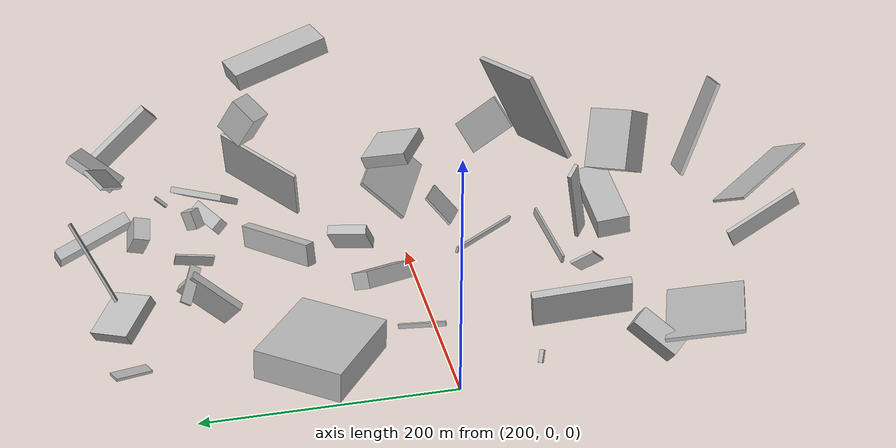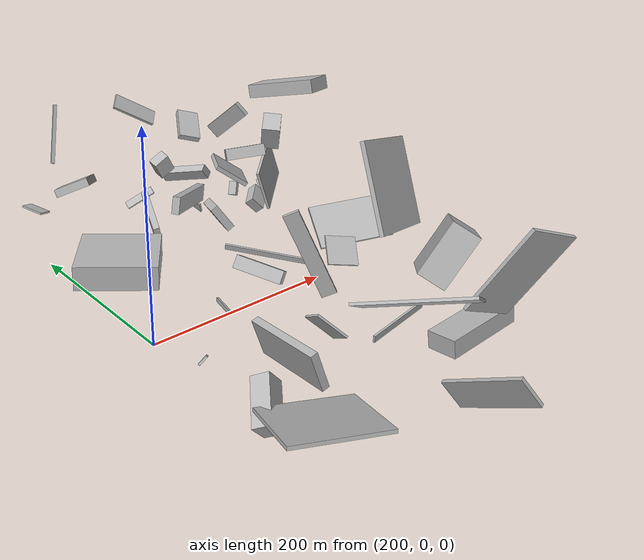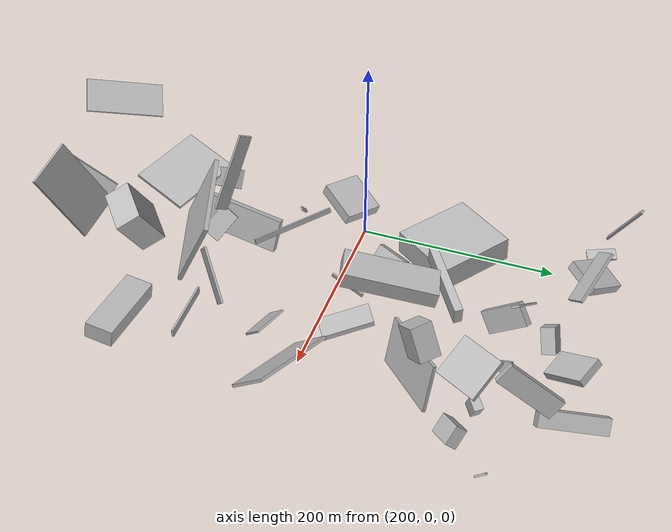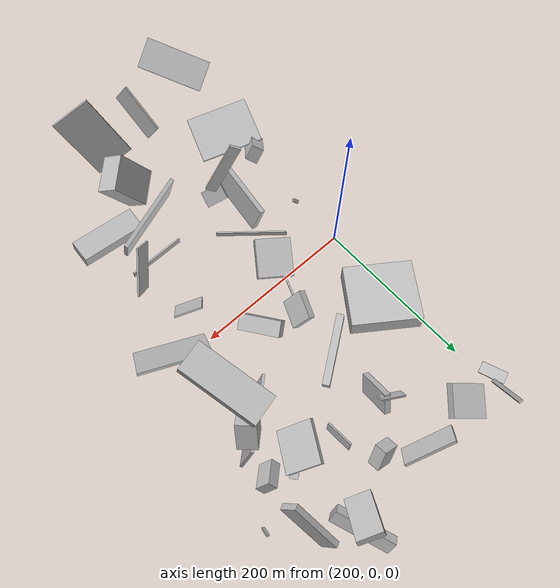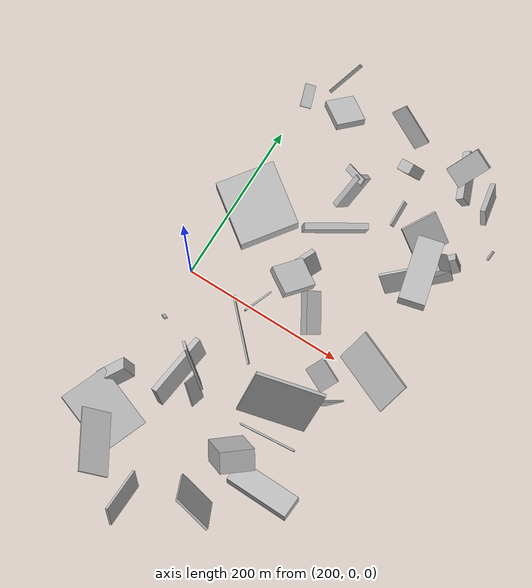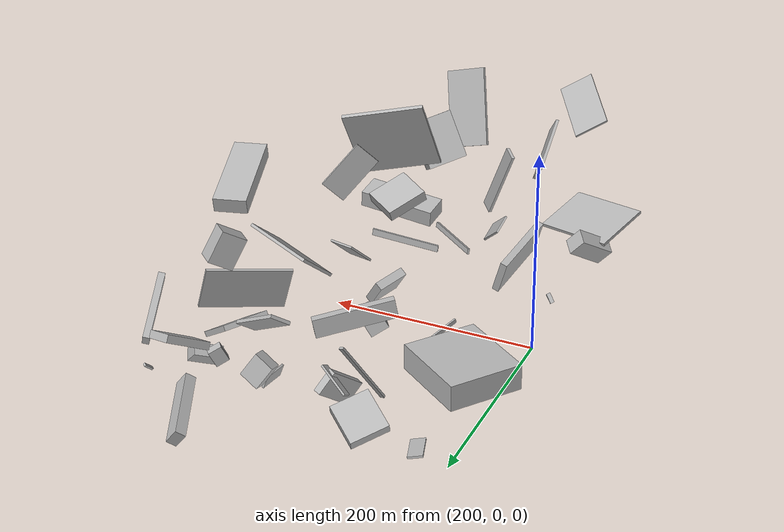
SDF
<sdf version="1.6">
 <world name="default">
  <model name="building_1">
   <static>0</static>
   <pose>321.53982198937206 184.36518339426453 60.038453072478234 2.3258296921843775 -0.7869318131240794 -2.5791826739291337</pose>
   <link name="link">
    <gravity>0</gravity>
    <pose>0 0 16.5 0 0 0</pose>
    <collision name="collision"><geometry><box><size>2 9 33</size></box></geometry></collision>
    <visual name="visual">
     <cast_shadows>0</cast_shadows>
     <geometry><box><size>2 9 33</size></box></geometry>
     <material>
      <script>
       <uri>model://HANNAS_wall/materials/scripts</uri>
       <uri>model://HANNAS_wall/materials/textures</uri>
       <name>vrc/HANNAS_wall</name>
      </script>
     </material>
    </visual>
   </link>
  </model>
  <model name="building_2">
   <static>0</static>
   <pose>244.5683551302554 256.04283425699384 55.06690252435276 -0.5538730846539689 1.1313897956090837 -1.2398270200220145</pose>
   <link name="link">
    <gravity>0</gravity>
    <pose>0 0 19.5 0 0 0</pose>
    <collision name="collision"><geometry><box><size>9 35 39</size></box></geometry></collision>
    <visual name="visual">
     <cast_shadows>0</cast_shadows>
     <geometry><box><size>9 35 39</size></box></geometry>
     <material>
      <script>
       <uri>model://HANNAS_wall/materials/scripts</uri>
       <uri>model://HANNAS_wall/materials/textures</uri>
       <name>vrc/HANNAS_wall</name>
      </script>
     </material>
    </visual>
   </link>
  </model>
  <model name="building_4">
   <static>0</static>
   <pose>357.1433353258042 -166.04339648634334 84.56384752909005 0.2826874514921741 -0.49016615545306 2.1537494366476233</pose>
   <link name="link">
    <gravity>0</gravity>
    <pose>0 0 24.5 0 0 0</pose>
    <collision name="collision"><geometry><box><size>25 40 49</size></box></geometry></collision>
    <visual name="visual">
     <cast_shadows>0</cast_shadows>
     <geometry><box><size>25 40 49</size></box></geometry>
     <material>
      <script>
       <uri>model://HANNAS_wall/materials/scripts</uri>
       <uri>model://HANNAS_wall/materials/textures</uri>
       <name>vrc/HANNAS_wall</name>
      </script>
     </material>
    </visual>
   </link>
  </model>
  <model name="building_5">
   <static>0</static>
   <pose>367.97292701208306 227.73783851640553 59.9342800607387 0.5679465393910295 0.2706285916557988 -1.5300968830589297</pose>
   <link name="link">
    <gravity>0</gravity>
    <pose>0 0 12.0 0 0 0</pose>
    <collision name="collision"><geometry><box><size>13 19 24</size></box></geometry></collision>
    <visual name="visual">
     <cast_shadows>0</cast_shadows>
     <geometry><box><size>13 19 24</size></box></geometry>
     <material>
      <script>
       <uri>model://HANNAS_wall/materials/scripts</uri>
       <uri>model://HANNAS_wall/materials/textures</uri>
       <name>vrc/HANNAS_wall</name>
      </script>
     </material>
    </visual>
   </link>
  </model>
  <model name="building_6">
   <static>0</static>
   <pose>321.94541900886026 255.65552706213742 146.51356068530302 -2.1983301507741353 0.5951299160492228 -2.3150131637451965</pose>
   <link name="link">
    <gravity>0</gravity>
    <pose>0 0 25.0 0 0 0</pose>
    <collision name="collision"><geometry><box><size>19 3 50</size></box></geometry></collision>
    <visual name="visual">
     <cast_shadows>0</cast_shadows>
     <geometry><box><size>19 3 50</size></box></geometry>
     <material>
      <script>
       <uri>model://HANNAS_wall/materials/scripts</uri>
       <uri>model://HANNAS_wall/materials/textures</uri>
       <name>vrc/HANNAS_wall</name>
      </script>
     </material>
    </visual>
   </link>
  </model>
  <model name="building_11">
   <static>0</static>
   <pose>420.35933814122984 -72.39825979661173 104.53142580228842 -1.473053835243545 0.7792441506766605 0.7714773359803924</pose>
   <link name="link">
    <gravity>0</gravity>
    <pose>0 0 1.0 0 0 0</pose>
    <collision name="collision"><geometry><box><size>52 29 2</size></box></geometry></collision>
    <visual name="visual">
     <cast_shadows>0</cast_shadows>
     <geometry><box><size>52 29 2</size></box></geometry>
     <material>
      <script>
       <uri>model://HANNAS_wall/materials/scripts</uri>
       <uri>model://HANNAS_wall/materials/textures</uri>
       <name>vrc/HANNAS_wall</name>
      </script>
     </material>
    </visual>
   </link>
  </model>
  <model name="building_15">
   <static>0</static>
   <pose>454.3205247265319 18.680084763223235 64.82193984084097 2.299274334736842 -0.08254288734875107 -0.4084981752505243</pose>
   <link name="link">
    <gravity>0</gravity>
    <pose>0 0 23.5 0 0 0</pose>
    <collision name="collision"><geometry><box><size>80 3 47</size></box></geometry></collision>
    <visual name="visual">
     <cast_shadows>0</cast_shadows>
     <geometry><box><size>80 3 47</size></box></geometry>
     <material>
      <script>
       <uri>model://HANNAS_wall/materials/scripts</uri>
       <uri>model://HANNAS_wall/materials/textures</uri>
       <name>vrc/HANNAS_wall</name>
      </script>
     </material>
    </visual>
   </link>
  </model>
  <model name="building_16">
   <static>0</static>
   <pose>326.4926368098241 114.91050336529258 69.84486807444134 -1.5125699800468517 0.17521963808138183 0.607301735482143</pose>
   <link name="link">
    <gravity>0</gravity>
    <pose>0 0 4.0 0 0 0</pose>
    <collision name="collision"><geometry><box><size>75 18 8</size></box></geometry></collision>
    <visual name="visual">
     <cast_shadows>0</cast_shadows>
     <geometry><box><size>75 18 8</size></box></geometry>
     <material>
      <script>
       <uri>model://HANNAS_wall/materials/scripts</uri>
       <uri>model://HANNAS_wall/materials/textures</uri>
       <name>vrc/HANNAS_wall</name>
      </script>
     </material>
    </visual>
   </link>
  </model>
  <model name="building_18">
   <static>0</static>
   <pose>238.9608457780845 -243.32008612772552 137.45421560194094 0.5344377974310542 0.24018456430994972 2.1257396357131166</pose>
   <link name="link">
    <gravity>0</gravity>
    <pose>0 0 1.0 0 0 0</pose>
    <collision name="collision"><geometry><box><size>76 35 2</size></box></geometry></collision>
    <visual name="visual">
     <cast_shadows>0</cast_shadows>
     <geometry><box><size>76 35 2</size></box></geometry>
     <material>
      <script>
       <uri>model://HANNAS_wall/materials/scripts</uri>
       <uri>model://HANNAS_wall/materials/textures</uri>
       <name>vrc/HANNAS_wall</name>
      </script>
     </material>
    </visual>
   </link>
  </model>
  <model name="building_19">
   <static>0</static>
   <pose>334.9131525838895 51.23666262697058 19.242122971849476 1.9829877771893691 -1.033915855724957 0.18963667894834102</pose>
   <link name="link">
    <gravity>0</gravity>
    <pose>0 0 25.5 0 0 0</pose>
    <collision name="collision"><geometry><box><size>14 19 51</size></box></geometry></collision>
    <visual name="visual">
     <cast_shadows>0</cast_shadows>
     <geometry><box><size>14 19 51</size></box></geometry>
     <material>
      <script>
       <uri>model://HANNAS_wall/materials/scripts</uri>
       <uri>model://HANNAS_wall/materials/textures</uri>
       <name>vrc/HANNAS_wall</name>
      </script>
     </material>
    </visual>
   </link>
  </model>
  <model name="building_20">
   <static>0</static>
   <pose>400.5558592657276 -31.981942946032973 43.09563115350597 -2.9176440780400448 -0.763154665497897 0.9791339971299844</pose>
   <link name="link">
    <gravity>0</gravity>
    <pose>0 0 1.0 0 0 0</pose>
    <collision name="collision"><geometry><box><size>30 32 2</size></box></geometry></collision>
    <visual name="visual">
     <cast_shadows>0</cast_shadows>
     <geometry><box><size>30 32 2</size></box></geometry>
     <material>
      <script>
       <uri>model://HANNAS_wall/materials/scripts</uri>
       <uri>model://HANNAS_wall/materials/textures</uri>
       <name>vrc/HANNAS_wall</name>
      </script>
     </material>
    </visual>
   </link>
  </model>
  <model name="building_21">
   <static>0</static>
   <pose>326.08281450230476 75.36427500101351 70.27158989770777 -1.4225935029083 0.6206829814180932 2.8365470944919573</pose>
   <link name="link">
    <gravity>0</gravity>
    <pose>0 0 15.5 0 0 0</pose>
    <collision name="collision"><geometry><box><size>8 28 31</size></box></geometry></collision>
    <visual name="visual">
     <cast_shadows>0</cast_shadows>
     <geometry><box><size>8 28 31</size></box></geometry>
     <material>
      <script>
       <uri>model://HANNAS_wall/materials/scripts</uri>
       <uri>model://HANNAS_wall/materials/textures</uri>
       <name>vrc/HANNAS_wall</name>
      </script>
     </material>
    </visual>
   </link>
  </model>
  <model name="building_24">
   <static>0</static>
   <pose>374.05560771170485 165.71342379470494 30.35902407241535 1.0038021462720719 -1.22700440174696 -2.5803876002851545</pose>
   <link name="link">
    <gravity>0</gravity>
    <pose>0 0 16.0 0 0 0</pose>
    <collision name="collision"><geometry><box><size>11 2 32</size></box></geometry></collision>
    <visual name="visual">
     <cast_shadows>0</cast_shadows>
     <geometry><box><size>11 2 32</size></box></geometry>
     <material>
      <script>
       <uri>model://HANNAS_wall/materials/scripts</uri>
       <uri>model://HANNAS_wall/materials/textures</uri>
       <name>vrc/HANNAS_wall</name>
      </script>
     </material>
    </visual>
   </link>
  </model>
  <model name="building_25">
   <static>0</static>
   <pose>411.4774705484781 -175.77173602401783 30.51588976289489 -3.023605707500485 0.085916448266306 3.107376561737641</pose>
   <link name="link">
    <gravity>0</gravity>
    <pose>0 0 8.5 0 0 0</pose>
    <collision name="collision"><geometry><box><size>80 28 17</size></box></geometry></collision>
    <visual name="visual">
     <cast_shadows>0</cast_shadows>
     <geometry><box><size>80 28 17</size></box></geometry>
     <material>
      <script>
       <uri>model://HANNAS_wall/materials/scripts</uri>
       <uri>model://HANNAS_wall/materials/textures</uri>
       <name>vrc/HANNAS_wall</name>
      </script>
     </material>
    </visual>
   </link>
  </model>
  <model name="building_30">
   <static>0</static>
   <pose>489.14865965309934 199.40716619260962 21.707170887338116 0.9756807874318756 -0.7654813950728107 1.4363300467733813</pose>
   <link name="link">
    <gravity>0</gravity>
    <pose>0 0 1.5 0 0 0</pose>
    <collision name="collision"><geometry><box><size>13 2 3</size></box></geometry></collision>
    <visual name="visual">
     <cast_shadows>0</cast_shadows>
     <geometry><box><size>13 2 3</size></box></geometry>
     <material>
      <script>
       <uri>model://HANNAS_wall/materials/scripts</uri>
       <uri>model://HANNAS_wall/materials/textures</uri>
       <name>vrc/HANNAS_wall</name>
      </script>
     </material>
    </visual>
   </link>
  </model>
  <model name="building_31">
   <static>0</static>
   <pose>260.55742273994053 -112.69491995401285 27.806536983903634 2.783692346117882 1.248150926837144 -0.44463457990562777</pose>
   <link name="link">
    <gravity>0</gravity>
    <pose>0 0 3.5 0 0 0</pose>
    <collision name="collision"><geometry><box><size>35 80 7</size></box></geometry></collision>
    <visual name="visual">
     <cast_shadows>0</cast_shadows>
     <geometry><box><size>35 80 7</size></box></geometry>
     <material>
      <script>
       <uri>model://HANNAS_wall/materials/scripts</uri>
       <uri>model://HANNAS_wall/materials/textures</uri>
       <name>vrc/HANNAS_wall</name>
      </script>
     </material>
    </visual>
   </link>
  </model>
  <model name="building_33">
   <static>0</static>
   <pose>208.88342839232777 244.31116007597095 46.127419451210166 0.09245259295662576 0.17413969268800525 0.3339589015863865</pose>
   <link name="link">
    <gravity>0</gravity>
    <pose>0 0 1.0 0 0 0</pose>
    <collision name="collision"><geometry><box><size>13 28 2</size></box></geometry></collision>
    <visual name="visual">
     <cast_shadows>0</cast_shadows>
     <geometry><box><size>13 28 2</size></box></geometry>
     <material>
      <script>
       <uri>model://HANNAS_wall/materials/scripts</uri>
       <uri>model://HANNAS_wall/materials/textures</uri>
       <name>vrc/HANNAS_wall</name>
      </script>
     </material>
    </visual>
   </link>
  </model>
  <model name="building_34">
   <static>0</static>
   <pose>354.42393726402497 -221.28666738361358 79.19681946710435 0.36861767349197394 0.3299774883195416 -0.18974162397520122</pose>
   <link name="link">
    <gravity>0</gravity>
    <pose>0 0 40.0 0 0 0</pose>
    <collision name="collision"><geometry><box><size>47 3 80</size></box></geometry></collision>
    <visual name="visual">
     <cast_shadows>0</cast_shadows>
     <geometry><box><size>47 3 80</size></box></geometry>
     <material>
      <script>
       <uri>model://HANNAS_wall/materials/scripts</uri>
       <uri>model://HANNAS_wall/materials/textures</uri>
       <name>vrc/HANNAS_wall</name>
      </script>
     </material>
    </visual>
   </link>
  </model>
  <model name="building_36">
   <static>0</static>
   <pose>419.80858059282394 254.17143824060315 97.08735576330547 -0.298816540223475 0.5097856728009594 -2.1197284092060937</pose>
   <link name="link">
    <gravity>0</gravity>
    <pose>0 0 3.5 0 0 0</pose>
    <collision name="collision"><geometry><box><size>43 26 7</size></box></geometry></collision>
    <visual name="visual">
     <cast_shadows>0</cast_shadows>
     <geometry><box><size>43 26 7</size></box></geometry>
     <material>
      <script>
       <uri>model://HANNAS_wall/materials/scripts</uri>
       <uri>model://HANNAS_wall/materials/textures</uri>
       <name>vrc/HANNAS_wall</name>
      </script>
     </material>
    </visual>
   </link>
  </model>
  <model name="building_40">
   <static>0</static>
   <pose>415.23016846635187 166.91613231238287 65.28188734794688 -0.5968900066433697 0.012001060525940594 -2.0847183060141554</pose>
   <link name="link">
    <gravity>0</gravity>
    <pose>0 0 2.5 0 0 0</pose>
    <collision name="collision"><geometry><box><size>44 41 5</size></box></geometry></collision>
    <visual name="visual">
     <cast_shadows>0</cast_shadows>
     <geometry><box><size>44 41 5</size></box></geometry>
     <material>
      <script>
       <uri>model://HANNAS_wall/materials/scripts</uri>
       <uri>model://HANNAS_wall/materials/textures</uri>
       <name>vrc/HANNAS_wall</name>
      </script>
     </material>
    </visual>
   </link>
  </model>
  <model name="building_41">
   <static>0</static>
   <pose>455.5510348787533 156.97632057071695 27.272083154900113 2.296855154220067 0.3521901056851182 -2.4173719541858243</pose>
   <link name="link">
    <gravity>0</gravity>
    <pose>0 0 6.0 0 0 0</pose>
    <collision name="collision"><geometry><box><size>27 19 12</size></box></geometry></collision>
    <visual name="visual">
     <cast_shadows>0</cast_shadows>
     <geometry><box><size>27 19 12</size></box></geometry>
     <material>
      <script>
       <uri>model://HANNAS_wall/materials/scripts</uri>
       <uri>model://HANNAS_wall/materials/textures</uri>
       <name>vrc/HANNAS_wall</name>
      </script>
     </material>
    </visual>
   </link>
  </model>
  <model name="building_45">
   <static>0</static>
   <pose>260.58084886616734 78.0712286967168 32.786475783972435 1.5479172124594813 0.017315502686469402 -2.199904375627292</pose>
   <link name="link">
    <gravity>0</gravity>
    <pose>0 0 40.0 0 0 0</pose>
    <collision name="collision"><geometry><box><size>72 25 80</size></box></geometry></collision>
    <visual name="visual">
     <cast_shadows>0</cast_shadows>
     <geometry><box><size>72 25 80</size></box></geometry>
     <material>
      <script>
       <uri>model://HANNAS_wall/materials/scripts</uri>
       <uri>model://HANNAS_wall/materials/textures</uri>
       <name>vrc/HANNAS_wall</name>
      </script>
     </material>
    </visual>
   </link>
  </model>
  <model name="building_46">
   <static>0</static>
   <pose>284.84574846895106 -132.98847154518822 50.314801554100455 -2.230116973428143 -0.6210373875121137 0.24544773210711454</pose>
   <link name="link">
    <gravity>0</gravity>
    <pose>0 0 10.0 0 0 0</pose>
    <collision name="collision"><geometry><box><size>2 32 20</size></box></geometry></collision>
    <visual name="visual">
     <cast_shadows>0</cast_shadows>
     <geometry><box><size>2 32 20</size></box></geometry>
     <material>
      <script>
       <uri>model://HANNAS_wall/materials/scripts</uri>
       <uri>model://HANNAS_wall/materials/textures</uri>
       <name>vrc/HANNAS_wall</name>
      </script>
     </material>
    </visual>
   </link>
  </model>
  <model name="building_47">
   <static>0</static>
   <pose>430.70991753570337 230.60552070959181 43.569958205736285 1.9576995583430288 -0.9148888509285477 -3.0725280858124546</pose>
   <link name="link">
    <gravity>0</gravity>
    <pose>0 0 33.0 0 0 0</pose>
    <collision name="collision"><geometry><box><size>16 10 66</size></box></geometry></collision>
    <visual name="visual">
     <cast_shadows>0</cast_shadows>
     <geometry><box><size>16 10 66</size></box></geometry>
     <material>
      <script>
       <uri>model://HANNAS_wall/materials/scripts</uri>
       <uri>model://HANNAS_wall/materials/textures</uri>
       <name>vrc/HANNAS_wall</name>
      </script>
     </material>
    </visual>
   </link>
  </model>
  <model name="building_48">
   <static>0</static>
   <pose>210.676868676987 -197.58604191302948 37.959275813156665 3.0464143307435254 -0.2217341136665041 -1.9035942417797669</pose>
   <link name="link">
    <gravity>0</gravity>
    <pose>0 0 1.5 0 0 0</pose>
    <collision name="collision"><geometry><box><size>61 80 3</size></box></geometry></collision>
    <visual name="visual">
     <cast_shadows>0</cast_shadows>
     <geometry><box><size>61 80 3</size></box></geometry>
     <material>
      <script>
       <uri>model://HANNAS_wall/materials/scripts</uri>
       <uri>model://HANNAS_wall/materials/textures</uri>
       <name>vrc/HANNAS_wall</name>
      </script>
     </material>
    </visual>
   </link>
  </model>
  <model name="building_51">
   <static>0</static>
   <pose>325.8280182299901 -69.78239535423596 68.52644091902388 0.9957617794526732 -1.296502525397477 -1.8071077927647</pose>
   <link name="link">
    <gravity>0</gravity>
    <pose>0 0 40.0 0 0 0</pose>
    <collision name="collision"><geometry><box><size>5 2 80</size></box></geometry></collision>
    <visual name="visual">
     <cast_shadows>0</cast_shadows>
     <geometry><box><size>5 2 80</size></box></geometry>
     <material>
      <script>
       <uri>model://HANNAS_wall/materials/scripts</uri>
       <uri>model://HANNAS_wall/materials/textures</uri>
       <name>vrc/HANNAS_wall</name>
      </script>
     </material>
    </visual>
   </link>
  </model>
  <model name="building_53">
   <static>0</static>
   <pose>385.78711264097177 -95.69447135286724 134.8880915346951 0.48526658739047723 -1.1325393450395527 1.4014594978492791</pose>
   <link name="link">
    <gravity>0</gravity>
    <pose>0 0 2.0 0 0 0</pose>
    <collision name="collision"><geometry><box><size>80 80 4</size></box></geometry></collision>
    <visual name="visual">
     <cast_shadows>0</cast_shadows>
     <geometry><box><size>80 80 4</size></box></geometry>
     <material>
      <script>
       <uri>model://HANNAS_wall/materials/scripts</uri>
       <uri>model://HANNAS_wall/materials/textures</uri>
       <name>vrc/HANNAS_wall</name>
      </script>
     </material>
    </visual>
   </link>
  </model>
  <model name="building_55">
   <static>0</static>
   <pose>457.45829777555105 102.62793700611184 174.46541321033789 -1.530538233895762 -1.3564161134081119 1.7802410299504512</pose>
   <link name="link">
    <gravity>0</gravity>
    <pose>0 0 15.0 0 0 0</pose>
    <collision name="collision"><geometry><box><size>14 80 30</size></box></geometry></collision>
    <visual name="visual">
     <cast_shadows>0</cast_shadows>
     <geometry><box><size>14 80 30</size></box></geometry>
     <material>
      <script>
       <uri>model://HANNAS_wall/materials/scripts</uri>
       <uri>model://HANNAS_wall/materials/textures</uri>
       <name>vrc/HANNAS_wall</name>
      </script>
     </material>
    </visual>
   </link>
  </model>
  <model name="building_56">
   <static>0</static>
   <pose>454.56163720809104 135.28048017634765 124.13397981907808 2.1110346780589984 0.07125370361169901 -0.7669972758280024</pose>
   <link name="link">
    <gravity>0</gravity>
    <pose>0 0 12.5 0 0 0</pose>
    <collision name="collision"><geometry><box><size>20 31 25</size></box></geometry></collision>
    <visual name="visual">
     <cast_shadows>0</cast_shadows>
     <geometry><box><size>20 31 25</size></box></geometry>
     <material>
      <script>
       <uri>model://HANNAS_wall/materials/scripts</uri>
       <uri>model://HANNAS_wall/materials/textures</uri>
       <name>vrc/HANNAS_wall</name>
      </script>
     </material>
    </visual>
   </link>
  </model>
  <model name="building_59">
   <static>0</static>
   <pose>204.79321230246495 -66.87322919678076 17.098927729195147 -1.9392901145514658 0.646269645814856 -1.0282146034644648</pose>
   <link name="link">
    <gravity>0</gravity>
    <pose>0 0 2.0 0 0 0</pose>
    <collision name="collision"><geometry><box><size>2 10 4</size></box></geometry></collision>
    <visual name="visual">
     <cast_shadows>0</cast_shadows>
     <geometry><box><size>2 10 4</size></box></geometry>
     <material>
      <script>
       <uri>model://HANNAS_wall/materials/scripts</uri>
       <uri>model://HANNAS_wall/materials/textures</uri>
       <name>vrc/HANNAS_wall</name>
      </script>
     </material>
    </visual>
   </link>
  </model>
  <model name="building_60">
   <static>0</static>
   <pose>428.12078289646087 174.34791508988752 30.30778925823734 -0.4483061115200976 0.018569184738727793 -0.8862359092171305</pose>
   <link name="link">
    <gravity>0</gravity>
    <pose>0 0 8.0 0 0 0</pose>
    <collision name="collision"><geometry><box><size>9 13 16</size></box></geometry></collision>
    <visual name="visual">
     <cast_shadows>0</cast_shadows>
     <geometry><box><size>9 13 16</size></box></geometry>
     <material>
      <script>
       <uri>model://HANNAS_wall/materials/scripts</uri>
       <uri>model://HANNAS_wall/materials/textures</uri>
       <name>vrc/HANNAS_wall</name>
      </script>
     </material>
    </visual>
   </link>
  </model>
  <model name="building_62">
   <static>0</static>
   <pose>204.1996242632879 -153.65363591633746 22.042744514230385 0.595099401477829 -0.44080921576696636 -0.9386463713853994</pose>
   <link name="link">
    <gravity>0</gravity>
    <pose>0 0 10.0 0 0 0</pose>
    <collision name="collision"><geometry><box><size>16 40 20</size></box></geometry></collision>
    <visual name="visual">
     <cast_shadows>0</cast_shadows>
     <geometry><box><size>16 40 20</size></box></geometry>
     <material>
      <script>
       <uri>model://HANNAS_wall/materials/scripts</uri>
       <uri>model://HANNAS_wall/materials/textures</uri>
       <name>vrc/HANNAS_wall</name>
      </script>
     </material>
    </visual>
   </link>
  </model>
  <model name="building_65">
   <static>0</static>
   <pose>247.25716938029984 261.76109390975745 121.11431880113332 2.055629286322696 -0.2881959491586621 2.9482469626863157</pose>
   <link name="link">
    <gravity>0</gravity>
    <pose>0 0 1.0 0 0 0</pose>
    <collision name="collision"><geometry><box><size>4 66 2</size></box></geometry></collision>
    <visual name="visual">
     <cast_shadows>0</cast_shadows>
     <geometry><box><size>4 66 2</size></box></geometry>
     <material>
      <script>
       <uri>model://HANNAS_wall/materials/scripts</uri>
       <uri>model://HANNAS_wall/materials/textures</uri>
       <name>vrc/HANNAS_wall</name>
      </script>
     </material>
    </visual>
   </link>
  </model>
  <model name="building_70">
   <static>0</static>
   <pose>338.6935584119752 16.434851150626244 147.94695381536656 -1.711878207218128 0.322640949892663 0.9455333945785159</pose>
   <link name="link">
    <gravity>0</gravity>
    <pose>0 0 17.5 0 0 0</pose>
    <collision name="collision"><geometry><box><size>38 10 35</size></box></geometry></collision>
    <visual name="visual">
     <cast_shadows>0</cast_shadows>
     <geometry><box><size>38 10 35</size></box></geometry>
     <material>
      <script>
       <uri>model://HANNAS_wall/materials/scripts</uri>
       <uri>model://HANNAS_wall/materials/textures</uri>
       <name>vrc/HANNAS_wall</name>
      </script>
     </material>
    </visual>
   </link>
  </model>
  <model name="building_71">
   <static>0</static>
   <pose>434.82603332911543 116.06665394776223 73.1653747144323 1.8279378546769884 0.17320218359364178 -2.423860802231068</pose>
   <link name="link">
    <gravity>0</gravity>
    <pose>0 0 1.5 0 0 0</pose>
    <collision name="collision"><geometry><box><size>80 45 3</size></box></geometry></collision>
    <visual name="visual">
     <cast_shadows>0</cast_shadows>
     <geometry><box><size>80 45 3</size></box></geometry>
     <material>
      <script>
       <uri>model://HANNAS_wall/materials/scripts</uri>
       <uri>model://HANNAS_wall/materials/textures</uri>
       <name>vrc/HANNAS_wall</name>
      </script>
     </material>
    </visual>
   </link>
  </model>
  <model name="building_72">
   <static>0</static>
   <pose>317.53402250464313 181.84978909956183 26.795173175443555 -0.26792242290711255 -0.6898498281281812 1.3309297460559912</pose>
   <link name="link">
    <gravity>0</gravity>
    <pose>0 0 11.5 0 0 0</pose>
    <collision name="collision"><geometry><box><size>47 7 23</size></box></geometry></collision>
    <visual name="visual">
     <cast_shadows>0</cast_shadows>
     <geometry><box><size>47 7 23</size></box></geometry>
     <material>
      <script>
       <uri>model://HANNAS_wall/materials/scripts</uri>
       <uri>model://HANNAS_wall/materials/textures</uri>
       <name>vrc/HANNAS_wall</name>
      </script>
     </material>
    </visual>
   </link>
  </model>
  <model name="building_73">
   <static>0</static>
   <pose>456.8835481058999 230.57089906022563 112.82380791773613 -2.442969323568469 0.2493858235983914 -2.742295608803446</pose>
   <link name="link">
    <gravity>0</gravity>
    <pose>0 0 9.5 0 0 0</pose>
    <collision name="collision"><geometry><box><size>6 59 19</size></box></geometry></collision>
    <visual name="visual">
     <cast_shadows>0</cast_shadows>
     <geometry><box><size>6 59 19</size></box></geometry>
     <material>
      <script>
       <uri>model://HANNAS_wall/materials/scripts</uri>
       <uri>model://HANNAS_wall/materials/textures</uri>
       <name>vrc/HANNAS_wall</name>
      </script>
     </material>
    </visual>
   </link>
  </model>
  <model name="building_74">
   <static>0</static>
   <pose>280.1199528722723 -7.446227198956003 5.85983156443776 -1.7302021526703213 0.09167836952918379 -0.3572617872494843</pose>
   <link name="link">
    <gravity>0</gravity>
    <pose>0 0 19.5 0 0 0</pose>
    <collision name="collision"><geometry><box><size>2 4 39</size></box></geometry></collision>
    <visual name="visual">
     <cast_shadows>0</cast_shadows>
     <geometry><box><size>2 4 39</size></box></geometry>
     <material>
      <script>
       <uri>model://HANNAS_wall/materials/scripts</uri>
       <uri>model://HANNAS_wall/materials/textures</uri>
       <name>vrc/HANNAS_wall</name>
      </script>
     </material>
    </visual>
   </link>
  </model>
  <model name="building_75">
   <static>0</static>
   <pose>293.2769340515196 -119.35506770508916 70.46485053662775 -0.0825616345021808 0.42767475065166305 2.3973976733768474</pose>
   <link name="link">
    <gravity>0</gravity>
    <pose>0 0 40.0 0 0 0</pose>
    <collision name="collision"><geometry><box><size>13 3 80</size></box></geometry></collision>
    <visual name="visual">
     <cast_shadows>0</cast_shadows>
     <geometry><box><size>13 3 80</size></box></geometry>
     <material>
      <script>
       <uri>model://HANNAS_wall/materials/scripts</uri>
       <uri>model://HANNAS_wall/materials/textures</uri>
       <name>vrc/HANNAS_wall</name>
      </script>
     </material>
    </visual>
   </link>
  </model>
  <model name="building_76">
   <static>0</static>
   <pose>286.4452390960754 -245.18343986252302 50.0557304257141 -0.622396524529047 -0.9086555824106766 2.3535511685875585</pose>
   <link name="link">
    <gravity>0</gravity>
    <pose>0 0 31.5 0 0 0</pose>
    <collision name="collision"><geometry><box><size>25 3 63</size></box></geometry></collision>
    <visual name="visual">
     <cast_shadows>0</cast_shadows>
     <geometry><box><size>25 3 63</size></box></geometry>
     <material>
      <script>
       <uri>model://HANNAS_wall/materials/scripts</uri>
       <uri>model://HANNAS_wall/materials/textures</uri>
       <name>vrc/HANNAS_wall</name>
      </script>
     </material>
    </visual>
   </link>
  </model>
  <model name="building_78">
   <static>0</static>
   <pose>383.3655796027928 -120.91866275575717 8.0825601887939 -0.09813535866543363 -0.07770933384178366 1.6525178227139106</pose>
   <link name="link">
    <gravity>0</gravity>
    <pose>0 0 3.5 0 0 0</pose>
    <collision name="collision"><geometry><box><size>2 71 7</size></box></geometry></collision>
    <visual name="visual">
     <cast_shadows>0</cast_shadows>
     <geometry><box><size>2 71 7</size></box></geometry>
     <material>
      <script>
       <uri>model://HANNAS_wall/materials/scripts</uri>
       <uri>model://HANNAS_wall/materials/textures</uri>
       <name>vrc/HANNAS_wall</name>
      </script>
     </material>
    </visual>
   </link>
  </model>
 </world>
</sdf>
